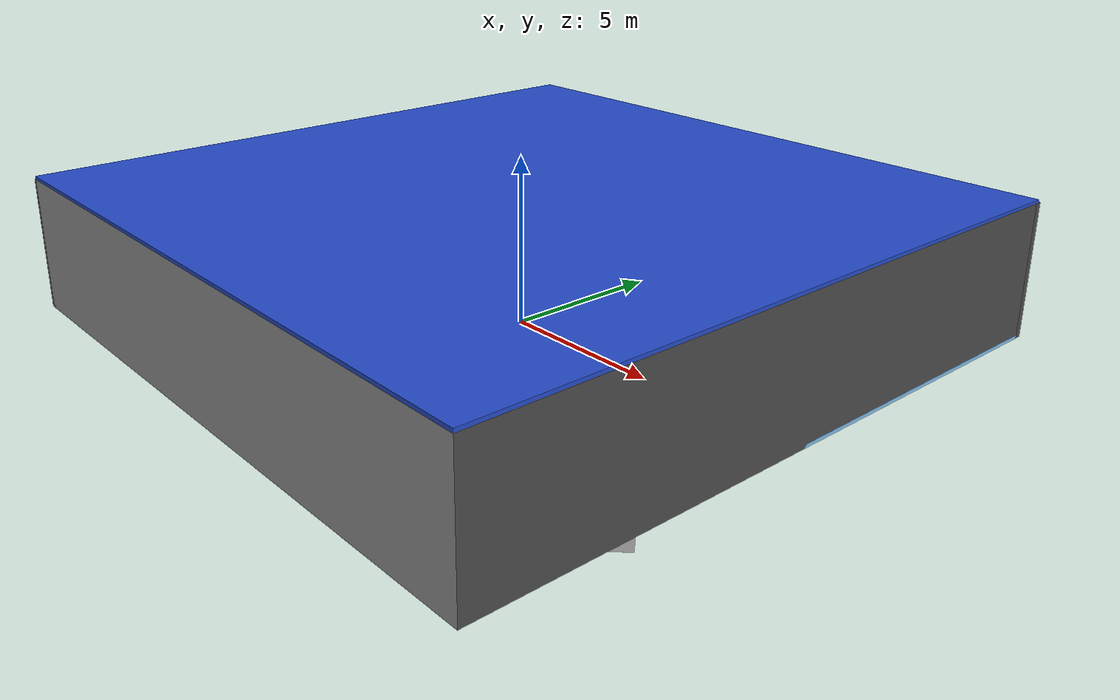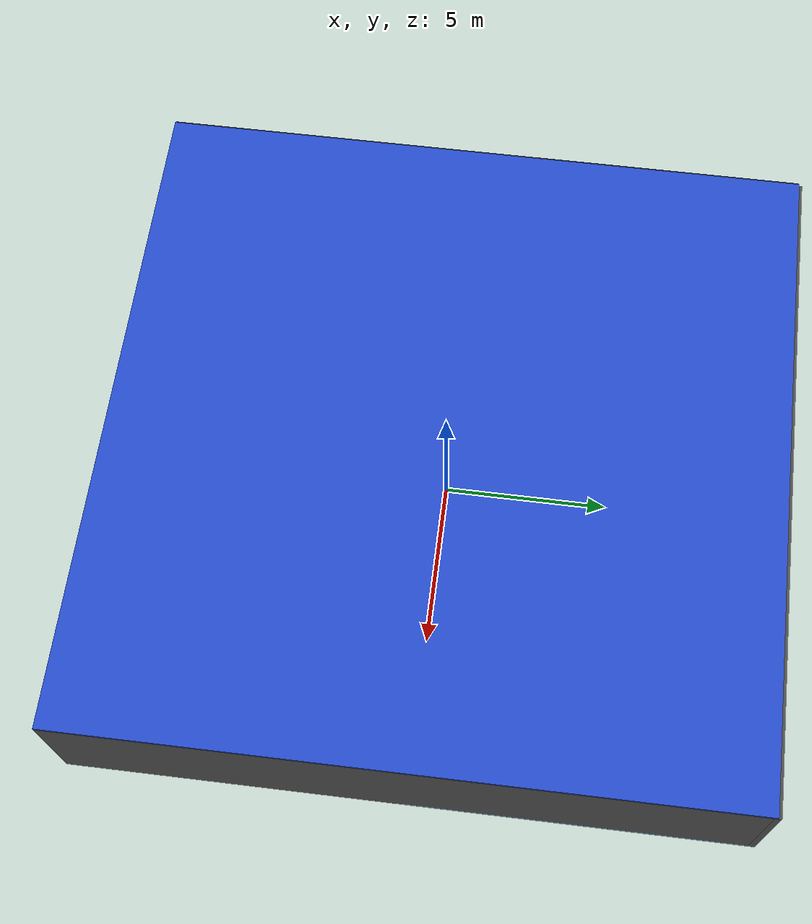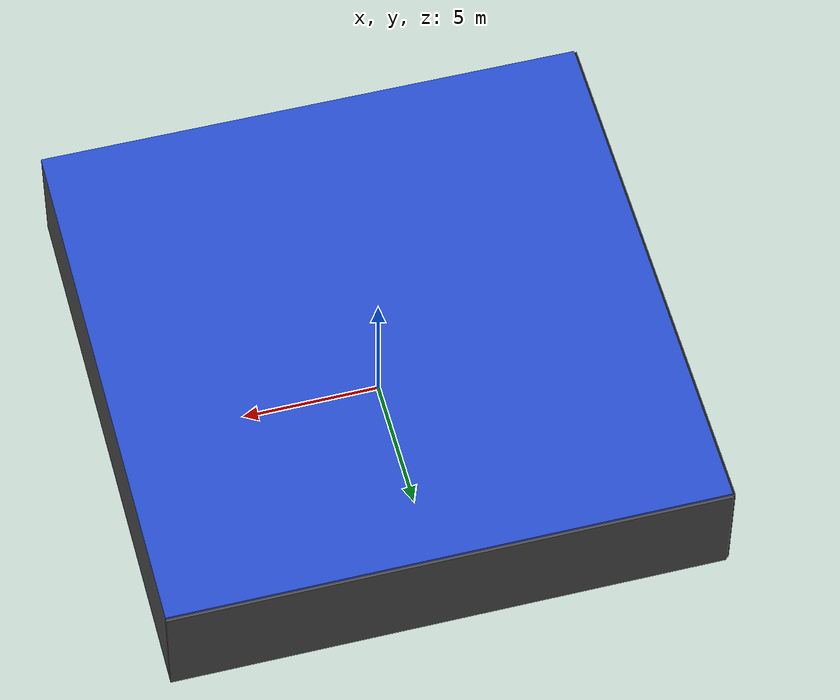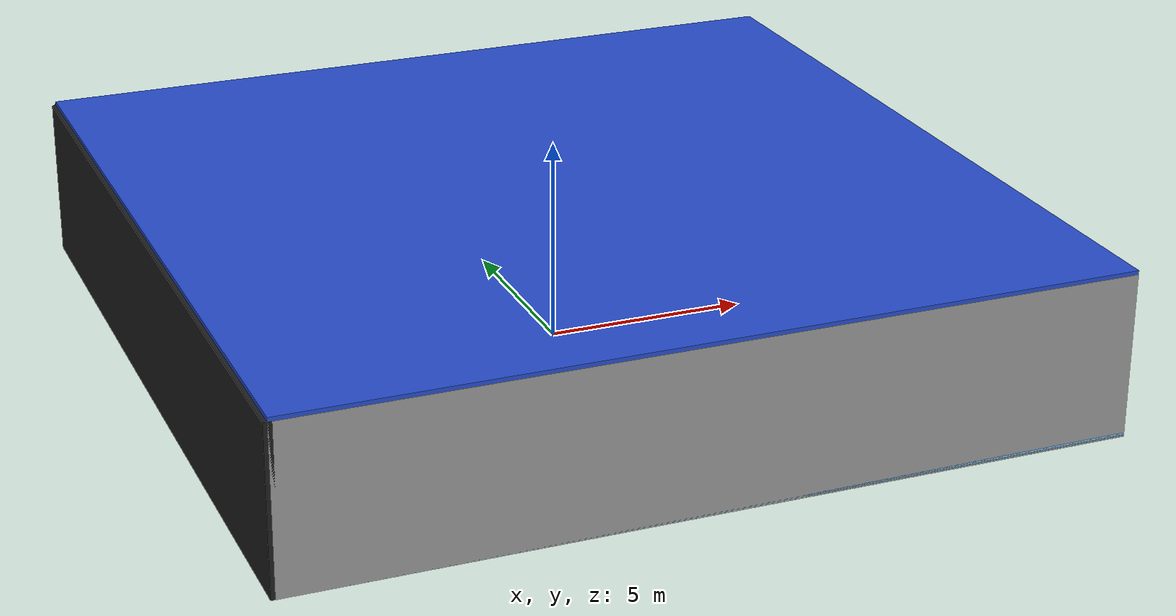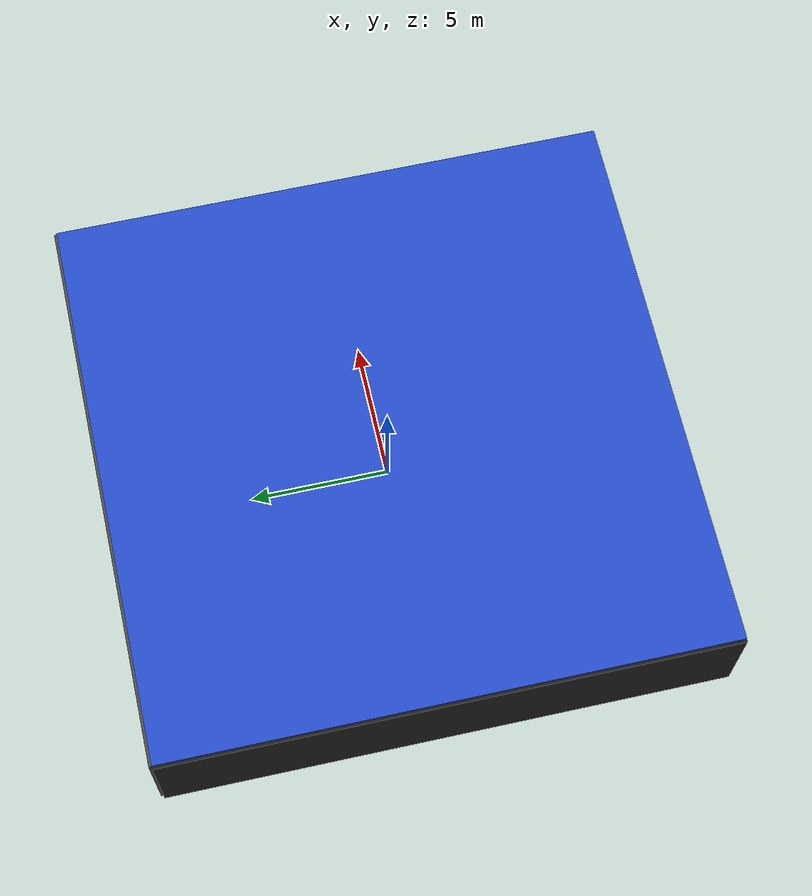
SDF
<sdf version="1.4">
 <world name="default">
  <physics type="ode">
   <max_step_size>0.001</max_step_size>
   <real_time_factor>1</real_time_factor>
   <real_time_update_rate>1000</real_time_update_rate>
   <gravity>0 0 -9.8</gravity>
  </physics>
  <scene><ambient>0.4 0.4 0.4 1</ambient><background>0.7 0.7 0.7 1</background><shadows>1</shadows></scene>
  <model name="Surrounding">
   <static>1</static>
   <link name="Ceiling">
    <collision name="Ceiling_Collision"><geometry><box><size>20 20 0.1</size></box></geometry></collision>
    <visual name="Ceiling_Visual">
     <geometry><box><size>20 20 0.1</size></box></geometry>
     <material>
      <script><uri>file://media/materials/scripts/gazebo.material</uri><name>Gazebo/BlueGlow</name></script>
     </material>
    </visual>
    <pose>0 0 4.05 0 0 0</pose>
   </link>
   <link name="Wall_South">
    <collision name="Wall_South_Collision">
     <geometry><box><size>20 0 4</size></box></geometry>
     <pose>0 0 2 0 -0 0</pose>
    </collision>
    <visual name="Wall_South_Visual">
     <pose>0 0 2 0 -0 0</pose>
     <geometry><box><size>20 0 4</size></box></geometry>
     <material>
      <script><uri>file://media/materials/scripts/gazebo.material</uri><name>Gazebo/GreyGradientSky</name></script>
     </material>
    </visual>
    <velocity_decay><linear>0</linear><angular>0</angular></velocity_decay>
    <pose>0 -10 0 0 -0 0</pose>
   </link>
   <link name="Wall_East">
    <collision name="Wall_21_Collision">
     <geometry><box><size>20 0 4</size></box></geometry>
     <pose>0 0 2 0 -0 0</pose>
    </collision>
    <visual name="Wall_21_Visual">
     <pose>0 0 2 0 -0 0</pose>
     <geometry><box><size>20 0 4</size></box></geometry>
     <material>
      <script><uri>file://media/materials/scripts/gazebo.material</uri><name>Gazebo/Road</name></script>
     </material>
    </visual>
    <velocity_decay><linear>0</linear><angular>0</angular></velocity_decay>
    <pose>10 0 0 0 -0 1.5708</pose>
   </link>
   <link name="Wall_North">
    <collision name="Wall_22_Collision">
     <geometry><box><size>20 0.2 4</size></box></geometry>
     <pose>0 0 2 0 -0 0</pose>
    </collision>
    <visual name="Wall_22_Visual">
     <pose>0 0 2 0 -0 0</pose>
     <geometry><box><size>20 0.2 4</size></box></geometry>
     <material>
      <script><uri>file://media/materials/scripts/gazebo.material</uri><name>Gazebo/DarkGrey</name></script>
     </material>
    </visual>
    <velocity_decay><linear>0</linear><angular>0</angular></velocity_decay>
    <pose>0 10 0 0 -0 0</pose>
   </link>
   <link name="Wall_West">
    <collision name="Wall_23_Collision">
     <geometry><box><size>20 0.2 4</size></box></geometry>
     <pose>0 0 2 0 -0 0</pose>
    </collision>
    <visual name="Wall_23_Visual">
     <pose>0 0 2 0 -0 0</pose>
     <geometry><box><size>20 0.2 4</size></box></geometry>
     <material>
      <script><uri>file://media/materials/scripts/gazebo.material</uri><name>Gazebo/Black</name></script>
     </material>
    </visual>
    <velocity_decay><linear>0</linear><angular>0</angular></velocity_decay>
    <pose>-10 0 0 0 0 -1.5708</pose>
   </link>
   <link name="Ground_link">
    <collision name="collision">
     <pose>0 0 .05 0 -0 0</pose>
     <geometry><box><size>20 20 0.1</size></box></geometry>
    </collision>
    <visual name="visual">
     <pose>0 0 .05 0 -0 0</pose>
     <geometry><box><size>20 20 0.1</size></box></geometry>
     <material>
      <script><uri>file://media/materials/scripts/gazebo.material</uri><name>Gazebo/SkyBlue</name></script>
     </material>
    </visual>
   </link>
   <static>1</static>
  </model>
  <spherical_coordinates>
   <surface_model>EARTH_WGS84</surface_model>
   <latitude_deg>0</latitude_deg>
   <longitude_deg>0</longitude_deg>
   <elevation>0</elevation>
   <heading_deg>0</heading_deg>
  </spherical_coordinates>
  <light name="lightball_0" type="diffuse">
   <diffuse>0.8 0.8 0.8 1</diffuse>
   <specular>0.2 0.2 0.2 1</specular>
   <attenuation>
    <range>100</range>
    <constant>0.7</constant>
    <linear>0.01</linear>
    <quadratic>0.001</quadratic>
   </attenuation>
   <direction>-0.5 0.1 -0.9</direction>
   <pose>8.53965358839 6.88278292671 0.929526063119 0 0 0</pose>
  </light>
  <light name="lightball_1" type="diffuse">
   <diffuse>0.8 0.8 0.8 1</diffuse>
   <specular>0.2 0.2 0.2 1</specular>
   <attenuation>
    <range>100</range>
    <constant>0.7</constant>
    <linear>0.01</linear>
    <quadratic>0.001</quadratic>
   </attenuation>
   <direction>-0.5 0.1 -0.9</direction>
   <pose>8.99317708942 1.47757171348 2.2294425434 0 0 0</pose>
  </light>
  <include><uri>model://cabinet</uri><pose>-2.47885850205 3.31924670373 0 0 0 2.35706281027</pose></include>
  <include>
   <uri>model://textured_shapes</uri>
   <pose>-2.32721753502 6.68309558004 0 0 0 1.97391104603</pose>
  </include>
  <include><uri>model://cabinet</uri><pose>2.33169153827 -1.12873363274 0 0 0 0.180129074784</pose></include>
  <include><uri>model://table</uri><pose>5.25780684326 -6.84319236897 0 0 0 2.68999944918</pose></include>
  <include>
   <uri>model://construction_cone</uri>
   <pose>4.539768883 4.16979587181 0 0 0 1.04076573286</pose>
  </include>
  <include>
   <uri>model://construction_cone</uri>
   <pose>6.7202046455 -8.29900310968 0 0 0 1.69418983232</pose>
  </include>
  <include>
   <uri>model://textured_shapes</uri>
   <pose>8.09832790481 -4.22169530306 0 0 0 0.779654834706</pose>
  </include>
 </world>
</sdf>

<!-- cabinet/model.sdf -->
<sdf version="1.5">
  <model name="cabinet">
    <static>true</static>
    <link name="cabinet_bottom_plate">
      <inertial>
        <pose>0 0 -1 0 0 0</pose>
        <inertia>
          <ixx>2.050000</ixx>
          <ixy>0</ixy>
          <ixz>0</ixz>
          <iyy>2.050000</iyy>
          <iyz>0</iyz>
          <izz>2.050000</izz>
        </inertia>
        <mass>25.000000</mass>
      </inertial>
      <collision name="cabinet_bottom_plate_geom">
        <pose>0 0 0.010000 0 0 0</pose>
        <geometry>
          <box>
            <size>0.450000 0.450000 0.020000</size>
          </box>
        </geometry>
      </collision>
      <visual name="cabinet_bottom_plate_geom_visual">
        <pose>0 0 0.010000 0 0 0</pose>
        <geometry>
          <box>
            <size>0.450000 0.450000 0.020000</size>
          </box>
        </geometry>
        <material>
          <script>
            <uri>model://media/materials/scripts/gazebo.material</uri>
            <name>Gazebo/Wood</name>
          </script>
        </material>
      </visual>
      <collision name="cabinet_bottom_plate_geom_cabinet_back_plate">
        <pose>0.235000 0 0.510000 0 0 0</pose>
        <geometry>
          <box>
            <size>0.020000 0.450000 1.020000</size>
          </box>
        </geometry>
      </collision>
      <visual name="cabinet_bottom_plate_geom_cabinet_back_plate_visual">
        <pose>0.235000 0 0.510000 0 0 0</pose>
        <geometry>
          <box>
            <size>0.020000 0.450000 1.020000</size>
          </box>
        </geometry>
        <material>
          <script>
            <uri>model://media/materials/scripts/gazebo.material</uri>
            <name>Gazebo/Wood</name>
          </script>
        </material>
      </visual>
      <collision name="cabinet_bottom_plate_geom_cabinet_left_plate">
        <pose>0 0.235000 0.510000 0 0 0</pose>
        <geometry>
          <box>
            <size>0.450000 0.020000 1.020000</size>
          </box>
        </geometry>
      </collision>
      <visual name="cabinet_bottom_plate_geom_cabinet_left_plate_visual">
        <pose>0 0.235000 0.510000 0 0 0</pose>
        <geometry>
          <box>
            <size>0.450000 0.020000 1.020000</size>
          </box>
        </geometry>
        <material>
          <script>
            <uri>model://media/materials/scripts/gazebo.material</uri>
            <name>Gazebo/Wood</name>
          </script>
        </material>
      </visual>
      <collision name="cabinet_bottom_plate_geom_cabinet_middle_plate">
        <pose>0 0 0.510000 0 0 0</pose>
        <geometry>
          <box>
            <size>0.450000 0.450000 0.020000</size>
          </box>
        </geometry>
      </collision>
      <visual name="cabinet_bottom_plate_geom_cabinet_middle_plate_visual">
        <pose>0 0 0.510000 0 0 0</pose>
        <geometry>
          <box>
            <size>0.450000 0.450000 0.020000</size>
          </box>
        </geometry>
        <material>
          <script>
            <uri>model://media/materials/scripts/gazebo.material</uri>
            <name>Gazebo/Wood</name>
          </script>
        </material>
      </visual>
      <collision name="cabinet_bottom_plate_geom_cabinet_right_plate">
        <pose>0 -0.235000 0.510000 0 0 0</pose>
        <geometry>
          <box>
            <size>0.450000 0.020000 1.020000</size>
          </box>
        </geometry>
      </collision>
      <visual name="cabinet_bottom_plate_geom_cabinet_right_plate_visual">
        <pose>0 -0.235000 0.510000 0 0 0</pose>
        <geometry>
          <box>
            <size>0.450000 0.020000 1.020000</size>
          </box>
        </geometry>
        <material>
          <script>
            <uri>model://media/materials/scripts/gazebo.material</uri>
            <name>Gazebo/Wood</name>
          </script>
        </material>
      </visual>
      <collision name="cabinet_bottom_plate_geom_cabinet_top_plate">
        <pose>0 0 1.010000 0 0 0</pose>
        <geometry>
          <box>
            <size>0.450000 0.450000 0.020000</size>
          </box>
        </geometry>
      </collision>
      <visual name="cabinet_bottom_plate_geom_cabinet_top_plate_visual">
        <pose>0 0 1.010000 0 0 0</pose>
        <geometry>
          <box>
            <size>0.450000 0.450000 0.020000</size>
          </box>
        </geometry>
        <material>
          <script>
            <uri>model://media/materials/scripts/gazebo.material</uri>
            <name>Gazebo/Wood</name>
          </script>
        </material>
      </visual>
    </link>
  </model>
</sdf>

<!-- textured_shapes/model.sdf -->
<sdf version="1.6">
  <model name="textured_shapes">
    <pose>0 0 0.5 0 0 0</pose>
    <link name="box">
      <pose>0 -1.5 0 0 0 0</pose>
      <collision name="collision">
        <geometry>
          <box>
            <size>1 1 1</size>
          </box>
        </geometry>
      </collision>
      <visual name="visual">
        <geometry>
          <box>
            <size>1 1 1</size>
          </box>
        </geometry>
        <material>
          <script>
            <uri>model://../model_source/models/textured_shapes/materials/scripts</uri>
            <uri>model://../model_source/models/textured_shapes/materials/textures</uri>
            <name>TexturedShape/Squares</name>
          </script>
        </material>
      </visual>
    </link>
    <link name="sphere">
      <collision name="collision">
        <geometry>
          <sphere>
            <radius>0.5</radius>
          </sphere>
        </geometry>
      </collision>
      <visual name="visual">
        <geometry>
          <sphere>
            <radius>0.5</radius>
          </sphere>
        </geometry>
        <material>
          <script>
            <uri>model://../model_source/models/textured_shapes/materials/scripts</uri>
            <uri>model://../model_source/models/textured_shapes/materials/textures</uri>
            <name>TexturedShape/Squares</name>
          </script>
        </material>
      </visual>
    </link>
    <link name="cylinder">
      <pose>0 1.5 0 0 0 0</pose>
      <collision name="collision">
        <geometry>
          <cylinder>
            <radius>0.5</radius>
            <length>1</length>
          </cylinder>
        </geometry>
      </collision>
      <visual name="visual">
        <geometry>
          <cylinder>
            <radius>0.5</radius>
            <length>1</length>
          </cylinder>
        </geometry>
        <material>
          <script>
            <uri>model://../model_source/models/textured_shapes/materials/scripts</uri>
            <uri>model://../model_source/models/textured_shapes/materials/textures</uri>
            <name>TexturedShape/Squares</name>
          </script>
        </material>
      </visual>
    </link>
  </model>
</sdf>

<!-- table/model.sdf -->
<sdf version="1.5">
  <model name="table">
    <static>true</static>
    <link name="link">
      <collision name="surface">
        <pose>0 0 1.0 0 0 0</pose>
        <geometry>
          <box>
            <size>1.5 0.8 0.03</size>
          </box>
        </geometry>
        <surface>
          <friction>
            <ode>
              <mu>0.6</mu>
              <mu2>0.6</mu2>
            </ode>
          </friction>
        </surface>
      </collision>
      <visual name="visual1">
        <pose>0 0 1.0 0 0 0</pose>
        <geometry>
          <box>
            <size>1.5 0.8 0.03</size>
          </box>
        </geometry>
        <material>
          <script>
            <uri>model://media/materials/scripts/gazebo.material</uri>
            <name>Gazebo/Wood</name>
          </script>
        </material>
      </visual>
      <collision name="front_left_leg">
        <pose>0.68 0.38 0.5 0 0 0</pose>
        <geometry>
          <cylinder>
            <radius>0.02</radius>
            <length>1.0</length>
          </cylinder>
        </geometry>
      </collision>
      <visual name="front_left_leg">
        <pose>0.68 0.38 0.5 0 0 0</pose>
        <geometry>
          <cylinder>
            <radius>0.02</radius>
            <length>1.0</length>
          </cylinder>
        </geometry>
        <material>
          <script>
            <uri>model://media/materials/scripts/gazebo.material</uri>
            <name>Gazebo/Grey</name>
          </script>
        </material>
      </visual>
      <collision name="front_right_leg">
        <pose>0.68 -0.38 0.5 0 0 0</pose>
        <geometry>
          <cylinder>
            <radius>0.02</radius>
            <length>1.0</length>
          </cylinder>
        </geometry>
      </collision>
      <visual name="front_right_leg">
        <pose>0.68 -0.38 0.5 0 0 0</pose>
        <geometry>
          <cylinder>
            <radius>0.02</radius>
            <length>1.0</length>
          </cylinder>
        </geometry>
        <material>
          <script>
            <uri>model://media/materials/scripts/gazebo.material</uri>
            <name>Gazebo/Grey</name>
          </script>
        </material>
      </visual>
      <collision name="back_right_leg">
        <pose>-0.68 -0.38 0.5 0 0 0</pose>
        <geometry>
          <cylinder>
            <radius>0.02</radius>
            <length>1.0</length>
          </cylinder>
        </geometry>
      </collision>
      <visual name="back_right_leg">
        <pose>-0.68 -0.38 0.5 0 0 0</pose>
        <geometry>
          <cylinder>
            <radius>0.02</radius>
            <length>1.0</length>
          </cylinder>
        </geometry>
        <material>
          <script>
            <uri>model://media/materials/scripts/gazebo.material</uri>
            <name>Gazebo/Grey</name>
          </script>
        </material>
      </visual>
      <collision name="back_left_leg">
        <pose>-0.68 0.38 0.5 0 0 0</pose>
        <geometry>
          <cylinder>
            <radius>0.02</radius>
            <length>1.0</length>
          </cylinder>
        </geometry>
      </collision>
      <visual name="back_left_leg">
        <pose>-0.68 0.38 0.5 0 0 0</pose>
        <geometry>
          <cylinder>
            <radius>0.02</radius>
            <length>1.0</length>
          </cylinder>
        </geometry>
        <material>
          <script>
            <uri>model://media/materials/scripts/gazebo.material</uri>
            <name>Gazebo/Grey</name>
          </script>
        </material>
      </visual>
    </link>
  </model>
</sdf>

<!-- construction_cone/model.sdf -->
<sdf version="1.5">
  <model name="Construction Cone">
    <link name="link">
      <collision name="collision">
        <geometry>
          <mesh>
            <scale>10 10 10</scale>
            <uri>file://isr-testbed/construction_cone/meshes/construction_cone.dae</uri>
          </mesh>
        </geometry>
      </collision>
      <visual name="visual">
        <geometry>
          <mesh>
            <scale>10 10 10</scale>
            <uri>file://isr-testbed/construction_cone/meshes/construction_cone.dae</uri>
          </mesh>
        </geometry>
      </visual>
    </link>
  </model>
</sdf>
